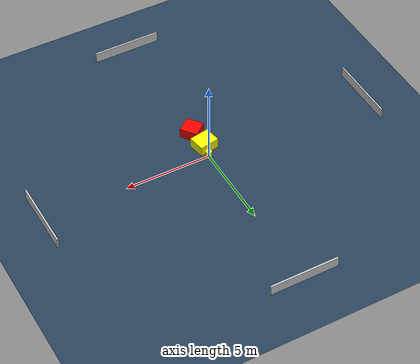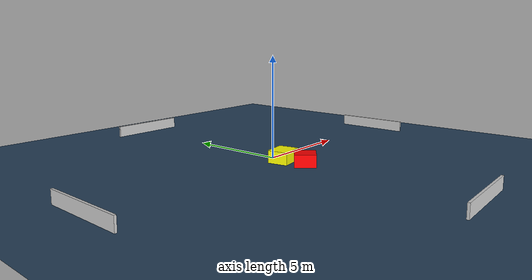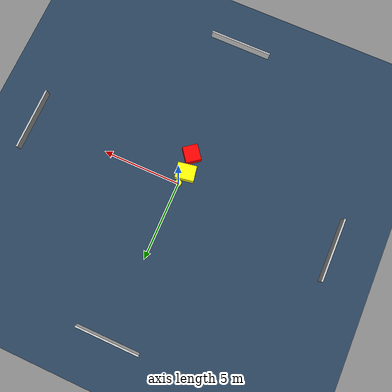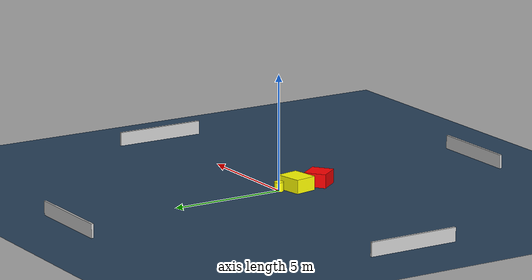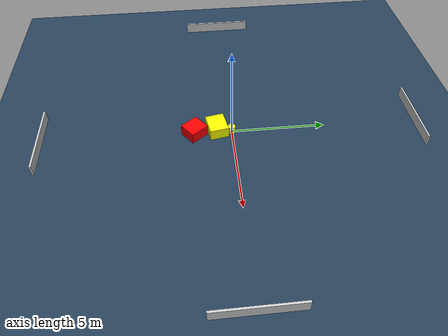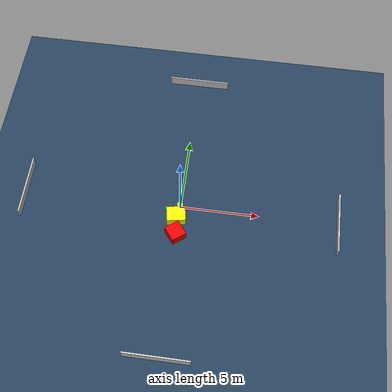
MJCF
<?xml version="1.0" ?>
<mujoco model="generated_environment">
  <option timestep="0.01" integrator="RK4" cone="elliptic"/>
  <default>
    <geom density="1"/>
  </default>
  <asset>
    <texture builtin="gradient" height="3072" name="skybox" rgb1="0.3 0.5 0.7" rgb2="0 0 0" type="skybox" width="512"/>
    <texture builtin="checker" height="300" name="groundplane" rgb1="0.2 0.3 0.4" rgb2="0.1 0.2 0.3" type="2d" width="300"/>
    <material name="groundplane" reflectance="0.2" texrepeat="5 5" texture="groundplane"/>
  </asset>
  <worldbody>
    <light dir="0 0 -1" directional="true" pos="0 0 1.5"/>
    <geom condim="3" friction="0.5 0.005 0.001" material="groundplane" name="floor" pos="0 0 0" size="0 0 0.05" type="plane"/>
    <body name="walls">
      <geom name="wall_1" condim="4" pos="-10.0 0.0 0.3" rgba="0.800000011920929 0.800000011920929 0.800000011920929 1.0" size="0.05 2.0 0.3" type="box"/>
      <geom name="wall_2" condim="4" pos="10.0 0.0 0.3" rgba="0.800000011920929 0.800000011920929 0.800000011920929 1.0" size="0.05 2.0 0.3" type="box"/>
      <geom name="wall_3" condim="4" pos="0.0 -10.0 0.3" rgba="0.800000011920929 0.800000011920929 0.800000011920929 1.0" size="2.0 0.05 0.3" type="box"/>
      <geom name="wall_4" condim="4" pos="0.0 10.0 0.3" rgba="0.800000011920929 0.800000011920929 0.800000011920929 1.0" size="2.0 0.05 0.3" type="box"/>
    </body>
    <body name="robot">
      <joint name="joint_x" type="slide" pos="0 0 0" axis="1 0 0"/>
      <joint name="joint_y" type="slide" pos="0 0 0" axis="0 1 0"/>
      <geom name="robot" type="cylinder" pos="0.0 0.0 0.2" size="0.2 0.2 0.0" mass="5.0" friction="1.0 0.005 0.0001" condim="4" rgba="1.0 1.0 0.0 1.0"/>
    </body>
    <body name="obstacle_1_movable">
      <geom name="obstacle_1_movable" condim="4" pos="-0.1576919270652151 -0.7782043913436475 0.3" euler="0 0 10.033697704924736" friction="0.0 0.005 0.001" rgba="1.0 1.0 0.0 1.0" size="0.5943008559472087 0.49403992609690506 0.3" type="box" mass="0.1"/>
      <joint type="free"/>
    </body>
    <body name="obstacle_2_static">
      <geom name="obstacle_2_static" condim="4" pos="-0.028762380249542713 -1.9759021779512582 0.3" euler="0 0 216.95436572312252" friction="0.0 0.005 0.001" rgba="1.0 0.0 0.0 1.0" size="0.48265390268715214 0.5103500088804236 0.3" type="box"/>
    </body>
  </worldbody>
  <actuator>
    <motor name="actuator_x" joint="joint_x" gear="1" ctrlrange="-1 1"/>
    <motor name="actuator_y" joint="joint_y" gear="1" ctrlrange="-1 1"/>
  </actuator>
</mujoco>
